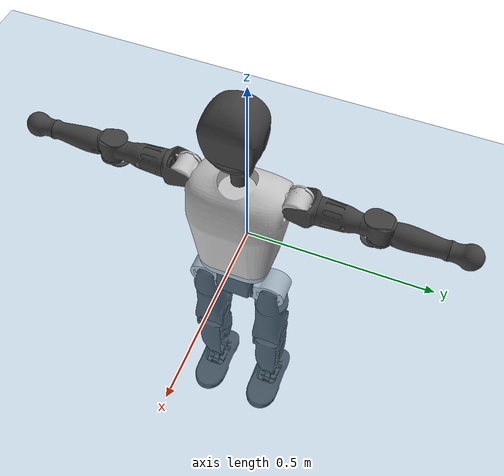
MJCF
<mujoco model="T1">
  <compiler angle="radian" assetdir="assets" balanceinertia="true" inertiafromgeom="false"/>

  <option timestep="0.005" density="1.2" viscosity="2e-05"/>

  <size nkey="1"/>

  <visual>
    <quality shadowsize="8192"/>
    <map shadowclip="0.5"/>
  </visual>

  <default>
    <default class="/">
      <joint armature="0.01" damping="0.01" frictionloss="0.1"/>
      <geom contype="0" conaffinity="0" group="1" solref="-1000 -80"/>
      <site size="0.01 0.005 0.005" group="5"/>
      <general forcelimited="true" biastype="affine" gainprm="25" biasprm="0 -25 -0.6"/>
      <default class="t1">
        <geom rgba="0.25 0.25 0.25 1"/>
        <default class="visual">
          <geom type="mesh" group="2"/>
        </default>
        <default class="collision">
          <geom group="3"/>
        </default>
        <default class="foot">
          <geom size="0.1115 0.05 0.015" type="box" condim="6" group="4" priority="1" solimp="0.015 1 0.015"/>
        </default>
        <default class="reward_collision_sphere">
          <geom group="5" rgba="1 0 0 1"/>
        </default>
      </default>
    </default>
  </default>

  <asset>
    <texture type="skybox" colorspace="auto" name="//unnamed_texture_0" builtin="gradient" rgb1="0.95 0.95 0.95" rgb2="0.95 0.95 0.95" width="100" height="600"/>
    <texture type="2d" colorspace="auto" name="texplane" builtin="checker" rgb1="0.345 0.575 0.748" rgb2="0.345 0.575 0.748" markrgb="1 1 1" width="512" height="512"/>
    <material name="MatPlane" class="/" texture="texplane" texuniform="true" texrepeat="2 2" specular="0.9"/>
    <mesh name="Trunk" class="/" file="Trunk.stl"/>
    <mesh name="H1" class="/" file="H1.stl"/>
    <mesh name="H2" class="/" file="H2.stl"/>
    <mesh name="AL1" class="/" file="AL1.stl"/>
    <mesh name="AL2" class="/" file="AL2.stl"/>
    <mesh name="AL3" class="/" file="AL3.stl"/>
    <mesh name="left_hand_link" class="/" file="left_hand_link.stl"/>
    <mesh name="AR1" class="/" file="AR1.stl"/>
    <mesh name="AR2" class="/" file="AR2.stl"/>
    <mesh name="AR3" class="/" file="AR3.stl"/>
    <mesh name="right_hand_link" class="/" file="right_hand_link.stl"/>
    <mesh name="Waist" class="/" file="Waist.stl"/>
    <mesh name="Hip_Pitch_Left" class="/" file="Hip_Pitch_Left.stl"/>
    <mesh name="Hip_Roll_Left" class="/" file="Hip_Roll_Left.stl"/>
    <mesh name="Hip_Yaw_Left" class="/" file="Hip_Yaw_Left.stl"/>
    <mesh name="Shank_Left" class="/" file="Shank_Left.stl"/>
    <mesh name="Ankle_Cross_Left" class="/" file="Ankle_Cross_Left.stl"/>
    <mesh name="left_foot_link" class="/" file="left_foot_link.stl"/>
    <mesh name="Hip_Pitch_Right" class="/" file="Hip_Pitch_Right.stl"/>
    <mesh name="Hip_Roll_Right" class="/" file="Hip_Roll_Right.stl"/>
    <mesh name="Hip_Yaw_Right" class="/" file="Hip_Yaw_Right.stl"/>
    <mesh name="Shank_Right" class="/" file="Shank_Right.stl"/>
    <mesh name="Ankle_Cross_Right" class="/" file="Ankle_Cross_Right.stl"/>
    <mesh name="right_foot_link" class="/" file="right_foot_link.stl"/>
  </asset>

  <worldbody>
    <geom name="floor" class="/" size="100 100 0.125" type="plane" group="0" material="MatPlane"/>
    <light name="toplight_shadow" class="/" pos="0 0 5" dir="0.0990148 0.0990148 -0.990148" type="directional" ambient="0.04 0.04 0.04" diffuse="0.55 0.55 0.55" specular="0.12 0.12 0.12"/>
    <light name="toplight_fill" class="/" pos="0 0 5" dir="0.0990148 0.0990148 -0.990148" type="directional" castshadow="false" ambient="0.04 0.04 0.04" diffuse="0.3 0.3 0.3" specular="0.08 0.08 0.08"/>
    <body name="trunk" childclass="t1" pos="0.000282816 -4.12167e-05 -0.000268422" quat="1 5.0021e-05 3.11992e-05 -0.000110457">
      <inertial pos="0.0425719 -0.000593291 0.114349" quat="0.999961 0.00165485 -0.0078014 0.00384546" mass="9.14776" diaginertia="0.027665 0.0416823 0.084591"/>
      <joint name="//unnamed_joint_0" type="free" armature="0" damping="0" frictionloss="0"/>
      <geom name="//unnamed_geom_1" class="visual" rgba="0.76 0.76 0.76 1" mesh="Trunk"/>
      <geom name="//unnamed_geom_2" class="collision" size="0.0689707 0.091961 0.137941" pos="0.0471134 0 0.130634" type="box"/>
      <geom name="//unnamed_geom_3" class="reward_collision_sphere" size="0.105755" pos="0.0471134 0 0.108862"/>
      <geom name="//unnamed_geom_4" class="reward_collision_sphere" size="0.0137941" pos="0.0471134 0.0752241 0"/>
      <geom name="//unnamed_geom_5" class="reward_collision_sphere" size="0.0137941" pos="0.0471134 -0.0752241 0"/>
      <geom name="//unnamed_geom_6" class="reward_collision_sphere" size="0.0137941" pos="0.0471134 0.0946939 0.195951"/>
      <geom name="//unnamed_geom_7" class="reward_collision_sphere" size="0.0137941" pos="0.0471134 -0.0946939 0.195951"/>
      <site name="imu" pos="0.00531223 -0.00135507 -0.00327277" size="0.0091961"/>
      <camera name="track" pos="0 -1.76998 0" quat="0.707107 0.707107 0 0" mode="trackcom"/>
      <camera name="ego_camera" pos="0.0957972 0 0.457219" quat="-0.5 -0.5 0.5 0.5"/>
      <body name="H1" pos="0.049491 0.000609882 0.264302" quat="1 0.000297987 0.000379129 0.000150938">
        <inertial pos="-0.00150767 -0.00184068 0.0619939" quat="0.763916 -0.0132037 0.00163397 0.645178" mass="0.349836" diaginertia="7.24677e-05 0.000121559 0.00023107"/>
        <joint name="AAHead_yaw" pos="0 0 0" axis="-0.000527914 -0.00011228 1" range="-1.58228 1.55462" armature="0.00932442" damping="0.0102197" frictionloss="0.0914148"/>
        <geom name="//unnamed_geom_8" class="visual" mesh="H1"/>
        <body name="H2" pos="-0.000383179 -0.000785625 0.0672198" quat="1 6.78522e-05 -2.41487e-05 1.40685e-05">
          <inertial pos="0.00639527 0.00130024 0.106559" quat="0.988529 0.105699 -0.075415 -0.0771453" mass="0.495107" diaginertia="0.000601709 0.00104301 0.00261002"/>
          <joint name="Head_pitch" pos="0 0 0" axis="0.000437351 -0.999999 0.00125923" range="-1.21813 0.335902" armature="0.00908347" damping="0.00909374" frictionloss="0.0924743"/>
          <geom name="//unnamed_geom_9" class="visual" mesh="H2"/>
          <geom name="//unnamed_geom_10" class="collision" size="0.0735688" pos="0.00785223 0 0.119748"/>
          <geom name="//unnamed_geom_11" class="reward_collision_sphere" size="0.0827649" pos="0.0157045 0 0.108862"/>
        </body>
      </body>
      <body name="AL1" pos="0.0466995 0.0946057 0.239327" quat="1 7.55937e-06 0.00030813 0.000113018">
        <inertial pos="-0.00152023 0.0387248 0.00052637" quat="0.502415 0.499599 -0.503069 0.494876" mass="0.410764" diaginertia="0.000405948 0.00070253 0.000444053"/>
        <joint name="Left_Shoulder_Pitch" pos="0 0 0" axis="0.000425186 1 0.000328962" range="-3.31518 1.23635" armature="0.00941815" damping="0.00915957" frictionloss="0.0926528"/>
        <geom name="//unnamed_geom_12" class="visual" rgba="0.76 0.76 0.76 1" mesh="AL1"/>
        <body name="AL2" pos="0.000539865 0.0431281 0.000306547" quat="1 -0.000501491 -0.000438311 0.000116317">
          <inertial pos="0.00191249 0.0337981 0.000176295" quat="0.487514 0.512825 -0.486216 0.512771" mass="0.127381" diaginertia="0.000120732 0.000188249 0.000270501"/>
          <joint name="Left_Shoulder_Roll" pos="0 0 0" axis="-0.999994 -0.00308209 -0.00167484" range="-1.5565 1.73515" armature="0.00879583" damping="0.00493563" frictionloss="0.0938431"/>
          <geom name="//unnamed_geom_13" class="visual" mesh="AL2"/>
          <body name="AL3" pos="-0.000371689 0.0544907 0.000151596" quat="1 0.00039834 -0.000188405 0.000204719">
            <inertial pos="0.000113987 0.0754156 -0.000158455" quat="0.706237 0.707975 -0.000133237 -0.000414972" mass="0.799324" diaginertia="0.00387693 0.00697149 0.00096661"/>
            <joint name="Left_Elbow_Pitch" pos="0 0 0" axis="0.000902756 -1 -0.000300399" range="-2.25649 2.26684" armature="0.00903177" damping="0.010102" frictionloss="0.0918259"/>
            <geom name="//unnamed_geom_14" class="visual" mesh="AL3"/>
            <geom name="//unnamed_geom_15" class="collision" size="0.0275883 0.0689707" pos="0 0.0442495 0" quat="0.707105 0.707108 0 0" type="cylinder"/>
            <geom name="//unnamed_geom_16" class="reward_collision_sphere" size="0.0331059"/>
            <body name="left_hand_link" pos="0.000555355 0.131612 -3.62573e-05" quat="1 0.000236149 -0.000104552 -0.00016531">
              <inertial pos="-4.55202e-06 0.0977677 4.27866e-05" quat="0.707052 0.707161 0.000137436 0.000952701" mass="0.25017" diaginertia="0.00237027 0.00433074 0.000326982"/>
              <joint name="Left_Elbow_Yaw" pos="0 0 0" axis="-0.00337999 -0.00246292 0.999991" range="-2.44688 -0.00510703" armature="0.00922157" damping="0.0142433" frictionloss="0.0967965"/>
              <geom name="//unnamed_geom_17" class="visual" mesh="left_hand_link"/>
              <geom name="//unnamed_geom_18" class="collision" size="0.0275883 0.0804658" pos="0 0.115049 0" quat="0.707105 0.707108 0 0" type="cylinder"/>
              <geom name="//unnamed_geom_19" class="reward_collision_sphere" size="0.0459805"/>
              <geom name="//unnamed_geom_20" class="reward_collision_sphere" size="0.0321863" pos="0 0.0973488 0"/>
              <geom name="//unnamed_geom_21" class="reward_collision_sphere" size="0.0321863" pos="0 0.190273 0"/>
            </body>
          </body>
        </body>
      </body>
      <body name="AR1" pos="0.0444837 -0.0936068 0.238184" quat="1 -8.29858e-05 0.000686486 7.41669e-05">
        <inertial pos="-0.000905517 -0.0403304 0.000399915" quat="0.504798 0.495718 -0.50363 0.495781" mass="0.406904" diaginertia="0.000405638 0.000698132 0.000448193"/>
        <joint name="Right_Shoulder_Pitch" pos="0 0 0" axis="-0.00284617 -0.999974 -0.00661893" stiffness="0.00418714" range="-1.21172 3.29946" armature="0.00932554" damping="0.00783291" frictionloss="0.0925038"/>
        <geom name="//unnamed_geom_22" class="visual" rgba="0.76 0.76 0.76 1" mesh="AR1"/>
        <body name="AR2" pos="-0.00113432 -0.0409302 -0.0004096" quat="1 -0.000209858 -0.000206811 0.000145858">
          <inertial pos="0.00382646 -0.0341869 0.00106284" quat="0.514156 0.490091 -0.509465 0.485696" mass="0.1243" diaginertia="0.000118259 0.000183498 0.00026774"/>
          <joint name="Right_Shoulder_Roll" pos="0 0 0" axis="-0.99997 -0.00751282 -0.00197012" range="-1.75769 1.55857" armature="0.00913543" damping="0.00688432" frictionloss="0.0898252"/>
          <geom name="//unnamed_geom_23" class="visual" mesh="AR2"/>
          <body name="AR3" pos="0.000630074 -0.0526741 -0.000125525" quat="1 -3.90024e-05 -9.97778e-06 -3.29442e-05">
            <inertial pos="-0.000225041 -0.0758237 0.000480864" quat="0.709392 0.704789 -0.00275276 -0.00526116" mass="0.80167" diaginertia="0.00388269 0.00687346 0.000945325"/>
            <joint name="Right_Elbow_Pitch" pos="0 0 0" axis="-0.000515998 1 -0.00077737" range="-2.27167 2.2657" armature="0.00895961" damping="0.00500801" frictionloss="0.0953518"/>
            <geom name="//unnamed_geom_24" class="visual" mesh="AR3"/>
            <geom name="//unnamed_geom_25" class="collision" size="0.0275883 0.0689707" pos="0 -0.0442495 0" quat="0.707105 0.707108 0 0" type="cylinder"/>
            <geom name="//unnamed_geom_26" class="reward_collision_sphere" size="0.0331059"/>
            <body name="right_hand_link" pos="-0.000855513 -0.130695 -0.000533211" quat="1 -0.000154016 0.00025368 -0.000281897">
              <inertial pos="2.22582e-05 -0.096937 0.00150468" quat="0.705504 0.708704 0.00121722 -0.0011416" mass="0.253157" diaginertia="0.00243198 0.0043609 0.000325282"/>
              <joint name="Right_Elbow_Yaw" pos="0 0 0" axis="-0.00221629 -0.00393238 0.99999" range="0.00248311 2.44564" armature="0.00969657" damping="0.00796724" frictionloss="0.0920403"/>
              <geom name="//unnamed_geom_27" class="visual" mesh="right_hand_link"/>
              <geom name="//unnamed_geom_28" class="collision" size="0.0275883 0.0804658" pos="0 -0.115049 0" quat="0.707105 0.707108 0 0" type="cylinder"/>
              <geom name="//unnamed_geom_29" class="reward_collision_sphere" size="0.0459805"/>
              <geom name="//unnamed_geom_30" class="reward_collision_sphere" size="0.0321863" pos="0 -0.0973488 0"/>
              <geom name="//unnamed_geom_31" class="reward_collision_sphere" size="0.0321863" pos="0 -0.190273 0"/>
            </body>
          </body>
        </body>
      </body>
      <body name="Waist" pos="0.0492472 -0.00172218 -0.125281" quat="1 0.000158172 -7.09575e-05 -2.44894e-05">
        <inertial pos="0.00228403 -0.000828281 0.00798016" quat="0.983526 -0.00298298 -0.180683 0.00458473" mass="1.9942" diaginertia="0.00160615 0.00286083 0.00731894"/>
        <joint name="Waist" pos="0 0 0" axis="-0.0001985 0.000755652 1" stiffness="8.57795e-07" range="-1.54867 1.55618" armature="0.00915418" damping="0.0121682" frictionloss="0.0910033"/>
        <geom name="//unnamed_geom_32" class="visual" mesh="Waist"/>
        <body name="Hip_Pitch_Left" pos="-4.7966e-05 0.0935308 0.000227209" quat="1 0.000183234 -3.99393e-05 -5.76869e-05">
          <inertial pos="0.00132338 -0.00580975 -0.0197037" quat="0.975249 0.220681 0.013648 0.00150294" mass="0.797692" diaginertia="0.000544268 0.000812954 0.00194094"/>
          <joint name="Left_Hip_Pitch" pos="0 0 0" axis="-0.000244892 0.999997 0.00261469" range="-1.80639 1.55567" armature="0.00921572" damping="0.00566056" frictionloss="0.0918363"/>
          <geom name="//unnamed_geom_33" class="visual" rgba="0.76 0.76 0.76 1" mesh="Hip_Pitch_Left"/>
          <body name="Hip_Roll_Left" pos="-0.000360811 -0.000258143 -0.0210855" quat="1 -2.25376e-05 -0.000102953 1.43898e-05">
            <inertial pos="0.000776397 -0.000152119 -0.0583219" quat="0.707482 -0.00597901 -0.00607227 0.70668" mass="0.298406" diaginertia="0.000520269 0.00081807 0.000783289"/>
            <joint name="Left_Hip_Roll" pos="0 0 0" axis="-1 -0.000204868 0.000612833" range="-1.56729 0.203015" armature="0.00913248" damping="0.0097901" frictionloss="0.0907769"/>
            <geom name="//unnamed_geom_34" class="visual" mesh="Hip_Roll_Left"/>
            <geom name="//unnamed_geom_35" class="reward_collision_sphere" size="0.0505785"/>
            <body name="Hip_Yaw_Left" pos="0.0012636 -0.000861805 -0.0893026" quat="1 0.000147662 -0.000269525 -0.000247601">
              <inertial pos="-0.00599637 -0.00061266 -0.0968325" quat="0.697386 -0.0361012 -0.0270209 0.715276" mass="1.70401" diaginertia="0.00773015 0.013551 0.00392046"/>
              <joint name="Left_Hip_Yaw" pos="0 0 0" axis="0.00148371 -4.35017e-05 -0.999999" range="-1.00647 1.01712" armature="0.00915151" damping="0.0113156" frictionloss="0.0917969"/>
              <geom name="//unnamed_geom_36" class="visual" mesh="Hip_Yaw_Left"/>
              <geom name="//unnamed_geom_37" class="collision" size="0.0459805 0.0735688" type="cylinder"/>
              <body name="Shank_Left" pos="-0.0102856 -8.57727e-05 -0.145511" quat="1 0.000193067 -4.94192e-05 0.000393803">
                <inertial pos="-0.00441634 1.79659e-05 -0.135726" quat="0.997549 0.000553358 -0.0227836 0.0661532" mass="1.32834" diaginertia="0.0104125 0.0184423 0.00282546"/>
                <joint name="Left_Knee_Pitch" pos="0 0 0" axis="-0.00184414 0.99999 -0.0040069" range="-0.0107016 2.33948" armature="0.00922731" damping="0.00767013" frictionloss="0.0924737"/>
                <geom name="//unnamed_geom_38" class="visual" mesh="Shank_Left"/>
                <geom name="//unnamed_geom_39" class="collision" size="0.0459805 0.0689707" pos="0 0 -0.130634" type="cylinder"/>
                <geom name="//unnamed_geom_40" class="reward_collision_sphere" size="0.0597746"/>
                <body name="Ankle_Cross_Left" pos="0.000364282 -0.00010351 -0.304684" quat="1 6.60569e-05 -0.000404146 0.000275155">
                  <inertial pos="-0.00317162 -0.000720103 -0.00986568" quat="0.442773 0.549786 0.552778 0.442858" mass="0.057401" diaginertia="8.71989e-06 1.41221e-05 1.76193e-05"/>
                  <joint name="Left_Ankle_Pitch" pos="0 0 0" axis="0.0024253 0.999992 0.00324253" range="-0.894975 0.331079" armature="0.00961594" damping="0.00474876" frictionloss="0.0930515"/>
                  <geom name="//unnamed_geom_41" class="visual" mesh="Ankle_Cross_Left"/>
                  <body name="left_foot_link" pos="-0.000719109 -0.000224779 -0.0142676" quat="1 4.34436e-05 -8.58719e-05 9.16015e-05">
                    <inertial pos="0.000129172 -0.000456641 -0.0095487" quat="-0.000980971 0.62123 -0.000749289 0.783627" mass="0.539449" diaginertia="0.000799679 0.00129616 0.0033419"/>
                    <joint name="Left_Ankle_Roll" pos="0 0 0" axis="-1 0.000219308 6.65542e-05" stiffness="0.000459043" range="-0.426329 0.452865" armature="0.00917468" damping="0.0130763" frictionloss="0.093349"/>
                    <geom name="//unnamed_geom_42" class="visual" mesh="left_foot_link"/>
                    <geom name="left_foot" class="foot" size="0.0997066 0.0485619 0.013543" pos="0.00785223 0 -0.0163293"/>
                    <geom name="//unnamed_geom_44" class="reward_collision_sphere" size="0.0478197" pos="0.00785223 0 -0.0163293"/>
                    <geom name="//unnamed_geom_45" class="reward_collision_sphere" size="0.0275883" pos="0.0745962 -0.0203548 -0.0163293"/>
                    <geom name="//unnamed_geom_46" class="reward_collision_sphere" size="0.0275883" pos="-0.0549656 -0.0203548 -0.0163293"/>
                    <site name="left_foot" class="foot" pos="0.00785223 0 -0.0163293" size="0.0091961"/>
                  </body>
                </body>
              </body>
            </body>
          </body>
        </body>
        <body name="Hip_Pitch_Right" pos="-0.000790983 -0.0939642 -8.15913e-05" quat="1 0.000107197 -0.000138349 2.70404e-06">
          <inertial pos="0.000399435 0.00645975 -0.0187377" quat="0.973555 -0.227929 0.0149525 -0.00399729" mass="0.794095" diaginertia="0.000539316 0.000795729 0.00190415"/>
          <joint name="Right_Hip_Pitch" pos="0 0 0" axis="0.00147962 -0.999995 -0.00269561" range="-1.57394 1.80493" armature="0.00918414" damping="0.00789713" frictionloss="0.0877907"/>
          <geom name="//unnamed_geom_47" class="visual" rgba="0.76 0.76 0.76 1" mesh="Hip_Pitch_Right"/>
          <body name="Hip_Roll_Right" pos="-0.000828445 0.000804814 -0.0225514" quat="1 0.000662772 0.000361822 3.33868e-05">
            <inertial pos="0.00228579 -0.000322072 -0.0577108" quat="0.706958 -0.00585882 -0.00711965 0.707195" mass="0.300992" diaginertia="0.000527698 0.000830341 0.000790816"/>
            <joint name="Right_Hip_Roll" pos="0 0 0" axis="-0.999998 7.14876e-05 0.00173317" range="-0.202874 1.56516" armature="0.00925791" damping="0.00960258" frictionloss="0.0917328"/>
            <geom name="//unnamed_geom_48" class="visual" mesh="Hip_Roll_Right"/>
            <geom name="//unnamed_geom_49" class="reward_collision_sphere" size="0.0505785"/>
            <body name="Hip_Yaw_Right" pos="0.000102271 0.000417246 -0.0892279" quat="1 -0.00029772 5.6922e-05 -0.000314011">
              <inertial pos="-0.00625145 -0.000841592 -0.0974358" quat="0.716572 -0.0330097 -0.0351644 0.695844" mass="1.68356" diaginertia="0.00776589 0.0140217 0.003938"/>
              <joint name="Right_Hip_Yaw" pos="0 0 0" axis="6.90361e-05 -0.000978714 -1" range="-0.997862 0.98242" armature="0.00927779" damping="0.00727809" frictionloss="0.0897755"/>
              <geom name="//unnamed_geom_50" class="visual" mesh="Hip_Yaw_Right"/>
              <geom name="//unnamed_geom_51" class="collision" size="0.0459805 0.0735688" type="cylinder"/>
              <body name="Shank_Right" pos="-0.0111559 -0.00115732 -0.145534" quat="1 -6.7533e-05 0.000143303 -8.61745e-06">
                <inertial pos="-0.00465498 -0.000986996 -0.134079" quat="0.999264 -0.00128753 -0.0229598 -0.0306966" mass="1.40198" diaginertia="0.0104706 0.0188076 0.003"/>
                <joint name="Right_Knee_Pitch" pos="0 0 0" axis="0.00417629 -0.999984 0.00387379" range="-2.34231 -0.00954798" armature="0.00922541" damping="0.00337252" frictionloss="0.0884193"/>
                <geom name="//unnamed_geom_52" class="visual" mesh="Shank_Right"/>
                <geom name="//unnamed_geom_53" class="collision" size="0.0459805 0.0689707" pos="0 0 -0.130634" type="cylinder"/>
                <geom name="//unnamed_geom_54" class="reward_collision_sphere" size="0.0597746"/>
                <body name="Ankle_Cross_Right" pos="0.00115352 -0.00064576 -0.304454" quat="1 9.64821e-05 -0.000112214 -3.0859e-05">
                  <inertial pos="-0.00292595 0.000570037 -0.00877893" quat="0.4464 0.550361 0.549459 0.442634" mass="0.0569804" diaginertia="8.71446e-06 1.40502e-05 1.73815e-05"/>
                  <joint name="Right_Ankle_Pitch" pos="0 0 0" axis="0.00155576 -0.999975 0.00689942" range="-0.348836 0.881174" armature="0.00908931" damping="0.00944245" frictionloss="0.0867738"/>
                  <geom name="//unnamed_geom_55" class="visual" mesh="Ankle_Cross_Right"/>
                  <body name="right_foot_link" pos="0.000155271 -0.00024459 -0.014001" quat="1 0.000199098 -0.000167486 0.00039466">
                    <inertial pos="9.22333e-05 0.000499254 -0.0100219" quat="0.00178221 0.621079 -0.00157743 0.783745" mass="0.528466" diaginertia="0.000805933 0.00128972 0.00335181"/>
                    <joint name="Right_Ankle_Roll" pos="0 0 0" axis="-1 0.000584135 -0.000687647" range="-0.415522 0.421936" armature="0.00941359" damping="0.0081461" frictionloss="0.0924656"/>
                    <geom name="//unnamed_geom_56" class="visual" mesh="right_foot_link"/>
                    <geom name="right_foot" class="foot" size="0.0933982 0.0461019 0.0136998" pos="0.00785223 0 -0.0163293"/>
                    <geom name="//unnamed_geom_58" class="reward_collision_sphere" size="0.0367844"/>
                    <geom name="//unnamed_geom_59" class="reward_collision_sphere" size="0.0275883" pos="0.00785223 0 -0.0163293"/>
                    <geom name="//unnamed_geom_60" class="reward_collision_sphere" size="0.0275883" pos="0.0745962 0.0203548 -0.0163293"/>
                    <geom name="//unnamed_geom_61" class="reward_collision_sphere" size="0.0275883" pos="-0.0549656 0.0203548 -0.0163293"/>
                    <site name="right_foot" class="foot" pos="0.00785223 0 -0.0163293" size="0.0091961"/>
                  </body>
                </body>
              </body>
            </body>
          </body>
        </body>
      </body>
    </body>
  </worldbody>

  <contact>
    <pair class="/" geom1="floor" geom2="left_foot" name="//unnamed_contact_0"/>
    <pair class="/" geom1="floor" geom2="right_foot" name="//unnamed_contact_1"/>
  </contact>

  <actuator>
    <general name="AAHead_yaw" class="/" joint="AAHead_yaw" forcerange="-6.65055 6.65055" gainprm="22.7134" biasprm="0 -22.7134 -0.525922"/>
    <general name="Head_pitch" class="/" joint="Head_pitch" forcerange="-6.53309 6.53309" gainprm="22.7134" biasprm="0 -22.7134 -0.525922"/>
    <general name="Left_Shoulder_Pitch" class="/" joint="Left_Shoulder_Pitch" forcerange="-16.5389 16.5389" gainprm="22.7134" biasprm="0 -22.7134 -0.525922"/>
    <general name="Left_Shoulder_Roll" class="/" joint="Left_Shoulder_Roll" forcerange="-16.3924 16.3924" gainprm="22.7134" biasprm="0 -22.7134 -0.525922"/>
    <general name="Left_Elbow_Pitch" class="/" joint="Left_Elbow_Pitch" forcerange="-16.604 16.604" gainprm="22.7134" biasprm="0 -22.7134 -0.525922"/>
    <general name="Left_Elbow_Yaw" class="/" joint="Left_Elbow_Yaw" forcerange="-16.3501 16.3501" gainprm="22.7134" biasprm="0 -22.7134 -0.525922"/>
    <general name="Right_Shoulder_Pitch" class="/" joint="Right_Shoulder_Pitch" forcerange="-16.5256 16.5256" gainprm="22.7134" biasprm="0 -22.7134 -0.525922"/>
    <general name="Right_Shoulder_Roll" class="/" joint="Right_Shoulder_Roll" forcerange="-16.4838 16.4838" gainprm="22.7134" biasprm="0 -22.7134 -0.525922"/>
    <general name="Right_Elbow_Pitch" class="/" joint="Right_Elbow_Pitch" forcerange="-16.592 16.592" gainprm="22.7134" biasprm="0 -22.7134 -0.525922"/>
    <general name="Right_Elbow_Yaw" class="/" joint="Right_Elbow_Yaw" forcerange="-16.5361 16.5361" gainprm="22.7134" biasprm="0 -22.7134 -0.525922"/>
    <general name="Waist" class="/" joint="Waist" forcerange="-26.8217 26.8217" gainprm="22.7134" biasprm="0 -22.7134 -0.525922"/>
    <general name="Left_Hip_Pitch" class="/" joint="Left_Hip_Pitch" forcerange="-39.503 39.503" gainprm="22.7134" biasprm="0 -22.7134 -0.525922"/>
    <general name="Left_Hip_Roll" class="/" joint="Left_Hip_Roll" forcerange="-28.0241 28.0241" gainprm="22.7134" biasprm="0 -22.7134 -0.525922"/>
    <general name="Left_Hip_Yaw" class="/" joint="Left_Hip_Yaw" forcerange="-27.3418 27.3418" gainprm="22.7134" biasprm="0 -22.7134 -0.525922"/>
    <general name="Left_Knee_Pitch" class="/" joint="Left_Knee_Pitch" forcerange="-55.0587 55.0587" gainprm="22.7134" biasprm="0 -22.7134 -0.525922"/>
    <general name="Left_Ankle_Pitch" class="/" joint="Left_Ankle_Pitch" forcerange="-18.7437 18.7437" gainprm="22.7134" biasprm="0 -22.7134 -0.525922"/>
    <general name="Left_Ankle_Roll" class="/" joint="Left_Ankle_Roll" forcerange="-13.8412 13.8412" gainprm="22.7134" biasprm="0 -22.7134 -0.525922"/>
    <general name="Right_Hip_Pitch" class="/" joint="Right_Hip_Pitch" forcerange="-42.578 42.578" gainprm="22.7134" biasprm="0 -22.7134 -0.525922"/>
    <general name="Right_Hip_Roll" class="/" joint="Right_Hip_Roll" forcerange="-27.9188 27.9188" gainprm="22.7134" biasprm="0 -22.7134 -0.525922"/>
    <general name="Right_Hip_Yaw" class="/" joint="Right_Hip_Yaw" forcerange="-27.376 27.376" gainprm="22.7134" biasprm="0 -22.7134 -0.525922"/>
    <general name="Right_Knee_Pitch" class="/" joint="Right_Knee_Pitch" forcerange="-53.1813 53.1813" gainprm="22.7134" biasprm="0 -22.7134 -0.525922"/>
    <general name="Right_Ankle_Pitch" class="/" joint="Right_Ankle_Pitch" forcerange="-18.9545 18.9545" gainprm="22.7134" biasprm="0 -22.7134 -0.525922"/>
    <general name="Right_Ankle_Roll" class="/" joint="Right_Ankle_Roll" forcerange="-13.4109 13.4109" gainprm="22.7134" biasprm="0 -22.7134 -0.525922"/>
  </actuator>

  <sensor>
    <gyro site="imu" name="imu_angular_velocity"/>
    <velocimeter site="imu" name="imu_linear_velocity"/>
    <framelinvel objtype="site" objname="left_foot" name="left_foot_global_linear_velocity"/>
    <framelinvel objtype="site" objname="right_foot" name="right_foot_global_linear_velocity"/>
  </sensor>

  <keyframe>
    <key name="home" qpos="0 0 0.6385 1 0 0 0 0 0 0 1.4 0 -0.4 0 -1.4 0 0.4 0 -0.4 0 0 0.8 -0.4 0 0.4 0 0 -0.8 0.4 0"/>
  </keyframe>
</mujoco>
